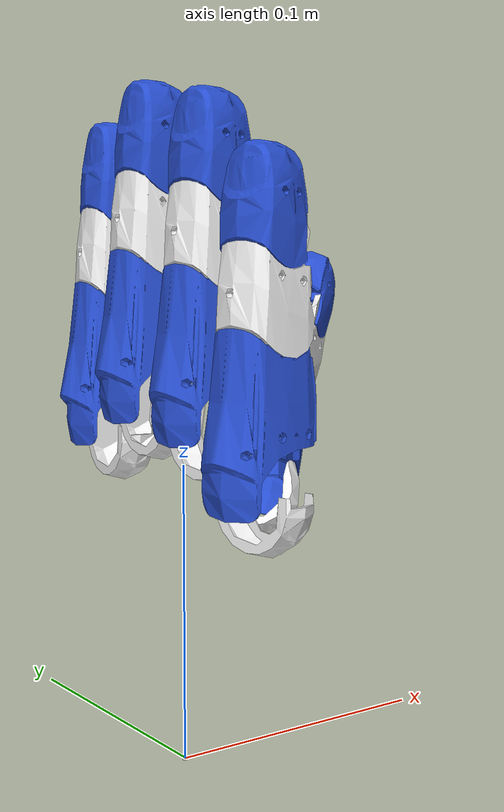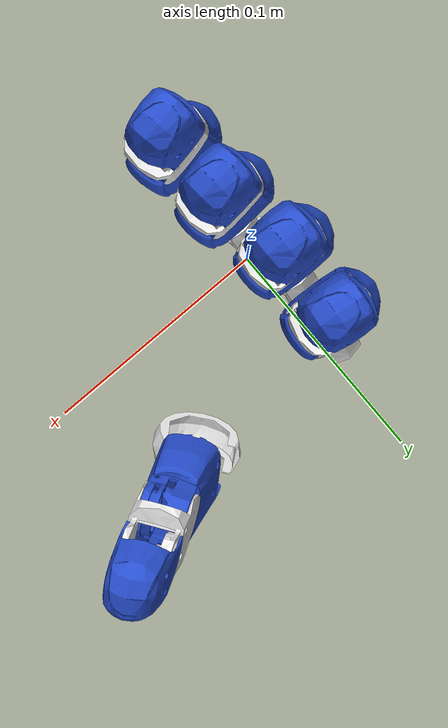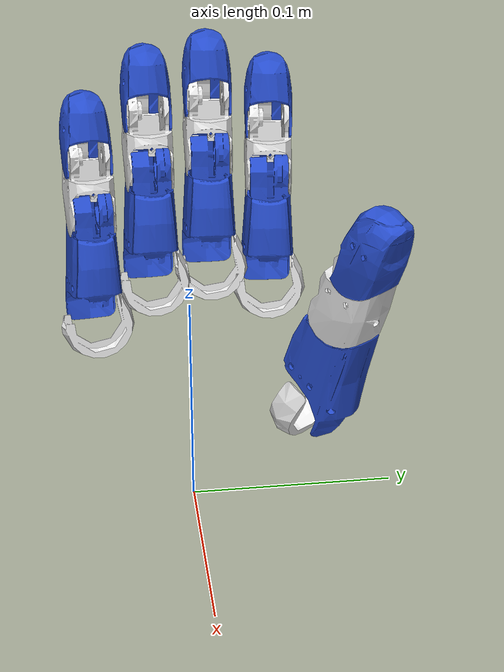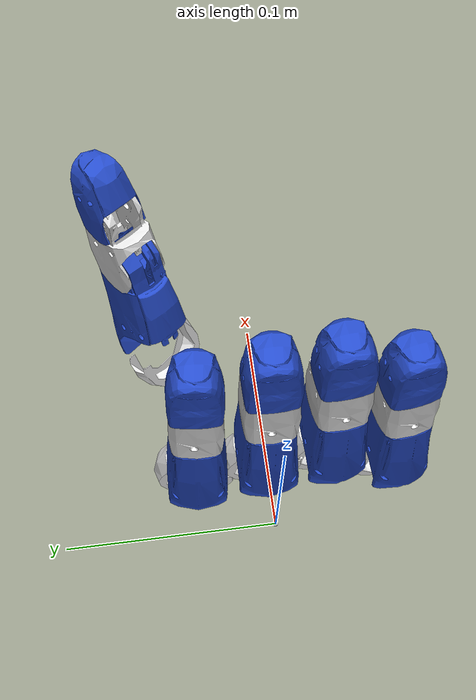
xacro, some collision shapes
<?xml version="1.0"?>
<robot xmlns:xacro="http://www.ros.org/wiki/xacro" name="hithand">
    <xacro:include filename="$(find hithand_description)/urdf/transmission.xacro" />
    <xacro:include filename="$(find hithand_description)/urdf/hithand.gazebo" />
    <xacro:property name="mu1" value="0.6"/>
    <xacro:property name="mu2" value="0.6"/>
    <link name="world"/>
    <joint name="fixed" type="fixed">
        <parent link="world"/>
        <child link="base_link"/>
    </joint>
    <link name="base_link">
  	<inertial>
      		<origin xyz="0.0 0.0 0.0"
        		rpy="0 0 0" />
      		<mass value="1.0"/>
      		<inertia ixx="1.0" ixy="0.0" ixz="0.0" iyy="1.0" iyz="0.0" izz="1.0" />
    	</inertial>
   	<visual>
      		<origin rpy="0 0 0" xyz="0 0 0" />
      		<geometry>
        		<mesh filename="package://hithand_description/meshes/visual/hit-hand-2-palm-right.dae"/>
      		</geometry>
      		<material name="grey" />
    	</visual>
    	<collision>
      		<origin rpy="0 0 0" xyz="0 0 0" />
      		<geometry name="hithand_right_palm_collision">
        		<cylinder length="0.001" radius="0.001" />
      		</geometry>
    	</collision>
  </link>

    <xacro:macro name="finger" params="prefix *transform_palm2finger">
        <!-- #########################fINGER######################## -->
        <link name="Right_${prefix}_Basecover">
            <inertial>
                <origin xyz="0 0 0"
                    rpy="0 0 0" />
                <mass value="1.0" />
                <inertia ixx="1.0" ixy="0.0" ixz="0.0" iyy="1.0" iyz="0.0" izz="1.0" />
            </inertial>
            <visual>
                <origin xyz="0 0 0"
                    rpy="0 0 0" />
                <geometry>
                <mesh filename="package://hithand_description/meshes/visual/hit-hand-2-finger-basecover.dae"/>
                </geometry>
            <material name="white"/>
            </visual>
            <collision>
                <origin xyz="0 0 0"
                    rpy="0 0 0" />
                <geometry name='hithand_${prefix}_base_cover'>
                    <cylinder length="0.001" radius="0.001" />
                </geometry>
                <surface>
                  <friction>
                    <ode>
                      <mu>${mu1}</mu>
                      <mu2>${mu2}</mu2>
                    </ode>
                  </friction>
                </surface>
            </collision>
      </link>

      <joint name="Right_${prefix}_1"
        type="revolute">
            <!-- joint origin in parent link frame -->
            <xacro:insert_block name="transform_palm2finger" />
            <parent link="base_link" />
            <child link="Right_${prefix}_Basecover" />
        <axis xyz="0 0 1" />
        <limit effort="30" lower="-0.50" upper="1.4" velocity="3.14"/>
      </joint>

      <link name="Right_${prefix}_Phoaprox">
            <inertial>
                    <origin xyz="0.06217593 0.044372912 0.078734808"
                            rpy="0.225810 -1.083656 0.411355" />
                    <mass value="1.0" />
                    <inertia ixx="1.0" ixy="0.0" ixz="0.0" iyy="1.0" iyz="0.0" izz="1.0" />
            </inertial>
            <visual>
                    <origin xyz="0 0 0"
                            rpy="0 0 0" />
                    <geometry>
                            <mesh filename="package://hithand_description/meshes/visual/hit-hand-2-finger-phaprox.dae" />
                    </geometry>
            <material name="lightblue"/>
            </visual>
            <collision>
                    <origin xyz="0.03 0 0"
                            rpy="0 0 0" />
                    <geometry name='hithand_${prefix}_phoarpox'>
                            <box size="0.03 0.03 0.02" />
                    </geometry>
                    <surface>
                      <friction>
                        <ode>
                          <mu>${mu1}</mu>
                          <mu2>${mu2}</mu2>
                        </ode>
                      </friction>
                    </surface>
            </collision>
      </link>

      <joint name="Right_${prefix}_2"
        type="revolute">
            <origin xyz="0 0 0 "
                    rpy="1.5708 0 0" />
            <parent link="Right_${prefix}_Basecover" />
            <child link="Right_${prefix}_Phoaprox" />
            <axis xyz="0 0 1" />
            <limit effort="30" lower="-0.50" upper="1.4" velocity="3.14"/>
      </joint>

      <link name="Right_${prefix}_Phamed">
            <inertial>
                    <origin xyz="0 0 0"
                            rpy="0 0 0" />
                    <mass value="1.0" />
                    <inertia ixx="1.0" ixy="0.0" ixz="0.0" iyy="1.0" iyz="0.0" izz="1.0" />
            </inertial>
            <visual>
                    <origin xyz="0 0 0"
                            rpy="0 0 0" />
                    <geometry>
                <mesh filename="package://hithand_description/meshes/visual/hit-hand-2-finger-phamed.dae" />
                    </geometry>
            <material name="white"/>
            </visual>
            <collision>
                    <origin xyz="0.01 0 0"
                            rpy="0 0 0" />
                    <geometry name='hithand_${prefix}_phamed'>
                            <box size="0.01 0.02 0.02" />
            </geometry>
            <surface>
              <friction>
                <ode>
                  <mu>${mu1}</mu>
                  <mu2>${mu2}</mu2>
                </ode>
              </friction>
            </surface>
            </collision>
      </link>

      <joint name="Right_${prefix}_3"
        type="revolute">
            <origin xyz="0.055 0 0"
                    rpy="0 0 0" />
            <parent link="Right_${prefix}_Phoaprox" />
            <child link="Right_${prefix}_Phamed" />
            <axis xyz="0 0 1" />
            <limit effort="30" lower="-0.50" upper="1.4" velocity="3.14"/>
      </joint>

      <link name="Right_${prefix}_Phadist">
            <inertial>
                    <origin xyz="0 0 0"
                            rpy="0 0 0" />
                    <mass value="1.0" />
                    <inertia ixx="1.0" ixy="0.0" ixz="0.0" iyy="1.0" iyz="0.0" izz="1.0" />
            </inertial>
            <visual>
                    <origin xyz="0 0 0"
                            rpy="0 0 0" />
                    <geometry>
                            <mesh filename="package://hithand_description/meshes/visual/hit-hand-2-finger-phadist.dae" />
                    </geometry>
                    <material name="lightblue"/>
            </visual>
            <collision>
                    <origin xyz="0 0 0"
                            rpy="0 0 0" />
                    <geometry name='hithand_${prefix}_phadist'>
                            <mesh filename="package://hithand_description/meshes/visual/hit-hand-2-finger-phadist.dae" />
                    </geometry>
                    <surface>
                      <friction>
                        <ode>
                          <mu>${mu1}</mu>
                          <mu2>${mu2}</mu2>
                        </ode>
                      </friction>
                    </surface>
            </collision>
      </link>

      <joint name="Right_${prefix}_4"
        type="revolute">
            <origin xyz="0.025 0 0"
                    rpy="0 0 -1.57" />
            <parent link="Right_${prefix}_Phamed" />
            <child link="Right_${prefix}_Phadist" />
            <axis xyz="0 0 1" />
            <limit effort="30" lower="-0.50" upper="1.4" velocity="3.14"/>
      </joint>
    </xacro:macro>

+
    <xacro:finger prefix="Thumb"  >
            <origin xyz="0.06217593 0.044372912 0.078734808"
            rpy="0.225810 -1.083656 0.411355" />
    </xacro:finger>

    <xacro:finger prefix="Index"  >
        <origin xyz="-0.002529881 0.03680013 0.107783545"
      		rpy="3.054326 -1.570796 0.000000" />
    </xacro:finger>

    <xacro:finger prefix="Middle"  >
            <origin xyz="-0.0037 0.01  0.117783545"
      		rpy="-3.141593 -1.570796 0.000000" />
    </xacro:finger>
    <xacro:finger prefix="Ring"   >
            <origin xyz="0 -0.01680013 0.11258354"
            rpy="-3.054326 -1.570796 0.000000" />
    </xacro:finger>
    <xacro:finger prefix="Little"  >
            <origin xyz="0.000971571 -0.0433963 0.093583545"
            rpy="-2.967060 -1.570796 0.000000" />
    </xacro:finger>

</robot>
